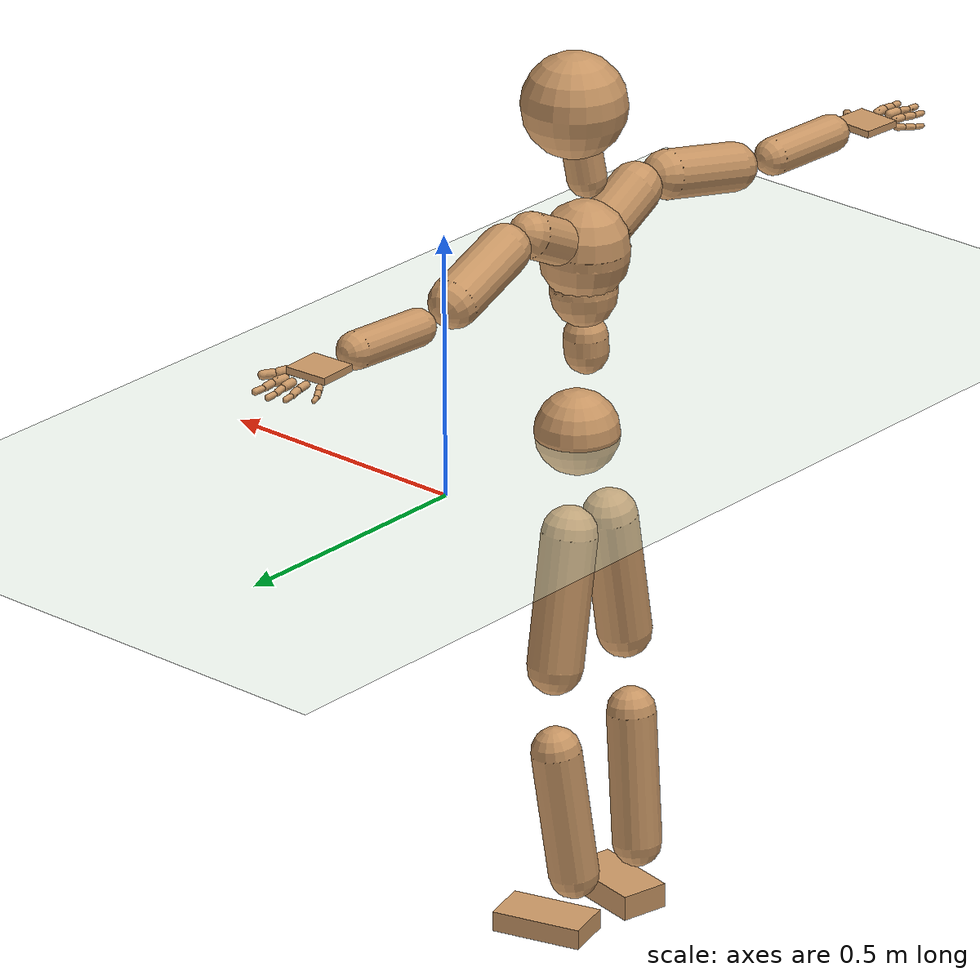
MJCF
<mujoco model="humanoid">
  <compiler coordinate="local" angle="radian"/>
  <default>
    <joint damping="0.0" armature="0.01" stiffness="0.0" limited="true"/>
    <geom conaffinity="1" condim="3" contype="7" margin="0.001" rgba="0.8 0.6 .4 1"/>
  </default>
  <asset>
    <texture type="skybox" builtin="gradient" rgb1=".4 .5 .6" rgb2="0 0 0" width="100" height="100"/>
    <texture builtin="flat" height="1278" mark="cross" markrgb="1 1 1" name="texgeom" random="0.01" rgb1="0.8 0.6 0.4" rgb2="0.8 0.6 0.4" type="cube" width="127"/>
    <texture builtin="checker" height="100" name="texplane" rgb1="0 0 0" rgb2="0.8 0.8 0.8" type="2d" width="100"/>
    <material name="MatPlane" reflectance="0.5" shininess="1" specular="1" texrepeat="60 60" texture="texplane"/>
    <material name="geom" texture="texgeom" texuniform="true"/>
  </asset>
  <worldbody>
    <light cutoff="100" diffuse="1 1 1" dir="-0 0 -1.3" directional="true" exponent="1" pos="0 0 1.3" specular=".1 .1 .1"/>
    <geom conaffinity="1" condim="3" name="floor" pos="0 0 0" rgba="0.8 0.9 0.8 1" size="100 100 .2" type="plane" material="MatPlane"/>
    <body name="Pelvis" pos="0.0001 -0.3563 0.0042">
      <freejoint name="Pelvis"/>
      <geom type="sphere" contype="1" conaffinity="1" density="500" size="0.0798" pos="0.0000 0.0000 0.0000" name="Pelvis"/>
      <body name="L_Hip" pos="-0.0326 0.0454 -0.0884">
        <joint name="L_Hip_x" type="hinge" pos="0 0 0" axis="1 0 0" stiffness="800" damping="80" armature="0.02" range="-180.0000 180.0000"/>
        <joint name="L_Hip_y" type="hinge" pos="0 0 0" axis="0 1 0" stiffness="800" damping="80" armature="0.02" range="-180.0000 180.0000"/>
        <joint name="L_Hip_z" type="hinge" pos="0 0 0" axis="0 0 1" stiffness="800" damping="80" armature="0.02" range="-180.0000 180.0000"/>
        <geom type="capsule" contype="1" conaffinity="1" density="500" fromto="-0.0008 0.0144 -0.0837 -0.0034 0.0574 -0.3347" size="0.0525" name="L_Hip"/>
        <body name="L_Knee" pos="-0.0042 0.0718 -0.4184">
          <joint name="L_Knee_x" type="hinge" pos="0 0 0" axis="1 0 0" stiffness="800" damping="80" armature="0.02" range="-180.0000 180.0000"/>
          <joint name="L_Knee_y" type="hinge" pos="0 0 0" axis="0 1 0" stiffness="800" damping="80" armature="0.02" range="-180.0000 180.0000"/>
          <joint name="L_Knee_z" type="hinge" pos="0 0 0" axis="0 0 1" stiffness="800" damping="80" armature="0.02" range="-180.0000 180.0000"/>
          <geom type="capsule" contype="1" conaffinity="1" density="500" fromto="-0.0079 -0.0073 -0.0835 -0.0315 -0.0293 -0.3338" size="0.0475" name="L_Knee"/>
          <body name="L_Ankle" pos="-0.0394 -0.0367 -0.4173">
            <joint name="L_Ankle_x" type="hinge" pos="0 0 0" axis="1 0 0" stiffness="800" damping="80" armature="0.02" range="-180.0000 180.0000"/>
            <joint name="L_Ankle_y" type="hinge" pos="0 0 0" axis="0 1 0" stiffness="800" damping="80" armature="0.02" range="-180.0000 180.0000"/>
            <joint name="L_Ankle_z" type="hinge" pos="0 0 0" axis="0 0 1" stiffness="800" damping="80" armature="0.02" range="-180.0000 180.0000"/>
            <geom type="box" contype="1" conaffinity="1" density="500" pos="0.0655 0.0180 -0.0298" size="0.0877 0.0469 0.0196" quat="0.9911 0.0000 0.0000 0.1335" name="L_Ankle"/>
            <body name="L_Toe" pos="0.1309 0.0359 -0.0597">
              <joint name="L_Toe_x" type="hinge" pos="0 0 0" axis="1 0 0" stiffness="500" damping="50" armature="0.02" range="-180.0000 180.0000"/>
              <joint name="L_Toe_y" type="hinge" pos="0 0 0" axis="0 1 0" stiffness="500" damping="50" armature="0.02" range="-180.0000 180.0000"/>
              <joint name="L_Toe_z" type="hinge" pos="0 0 0" axis="0 0 1" stiffness="500" damping="50" armature="0.02" range="-180.0000 180.0000"/>
              <geom type="box" contype="1" conaffinity="1" density="500" pos="0.0000 0.0000 0.0307" size="0.0009 0.0023 0.001" quat="0.9904 0.0000 0.0000 0.1385" name="L_Toe"/>
            </body>
          </body>
        </body>
      </body>
      <body name="R_Hip" pos="-0.0268 -0.0463 -0.098">
        <joint name="R_Hip_x" type="hinge" pos="0 0 0" axis="1 0 0" stiffness="800" damping="80" armature="0.02" range="-180.0000 180.0000"/>
        <joint name="R_Hip_y" type="hinge" pos="0 0 0" axis="0 1 0" stiffness="800" damping="80" armature="0.02" range="-180.0000 180.0000"/>
        <joint name="R_Hip_z" type="hinge" pos="0 0 0" axis="0 0 1" stiffness="800" damping="80" armature="0.02" range="-180.0000 180.0000"/>
        <geom type="capsule" contype="1" conaffinity="1" density="500" fromto="-0.0021 -0.0115 -0.0803 -0.0084 -0.0459 -0.3211" size="0.0521" name="R_Hip"/>
        <body name="R_Knee" pos="-0.0105 -0.0573 -0.4014">
          <joint name="R_Knee_x" type="hinge" pos="0 0 0" axis="1 0 0" stiffness="800" damping="80" armature="0.02" range="-180.0000 180.0000"/>
          <joint name="R_Knee_y" type="hinge" pos="0 0 0" axis="0 1 0" stiffness="800" damping="80" armature="0.02" range="-180.0000 180.0000"/>
          <joint name="R_Knee_z" type="hinge" pos="0 0 0" axis="0 0 1" stiffness="800" damping="80" armature="0.02" range="-180.0000 180.0000"/>
          <geom type="capsule" contype="1" conaffinity="1" density="500" fromto="-0.0077 0.0029 -0.0863 -0.0307 0.0116 -0.3453" size="0.0469" name="R_Knee"/>
          <body name="R_Ankle" pos="-0.0384 0.0145 -0.4316">
            <joint name="R_Ankle_x" type="hinge" pos="0 0 0" axis="1 0 0" stiffness="800" damping="80" armature="0.02" range="-180.0000 180.0000"/>
            <joint name="R_Ankle_y" type="hinge" pos="0 0 0" axis="0 1 0" stiffness="800" damping="80" armature="0.02" range="-180.0000 180.0000"/>
            <joint name="R_Ankle_z" type="hinge" pos="0 0 0" axis="0 0 1" stiffness="800" damping="80" armature="0.02" range="-180.0000 180.0000"/>
            <geom type="box" contype="1" conaffinity="1" density="500" pos="0.0683 -0.0148 -0.0297" size="0.0877 0.0469 0.0241" quat="0.9944 0.0000 0.0000 -0.1061" name="R_Ankle"/>
            <body name="R_Toe" pos="0.1367 -0.0295 -0.0595">
              <joint name="R_Toe_x" type="hinge" pos="0 0 0" axis="1 0 0" stiffness="500" damping="50" armature="0.02" range="-180.0000 180.0000"/>
              <joint name="R_Toe_y" type="hinge" pos="0 0 0" axis="0 1 0" stiffness="500" damping="50" armature="0.02" range="-180.0000 180.0000"/>
              <joint name="R_Toe_z" type="hinge" pos="0 0 0" axis="0 0 1" stiffness="500" damping="50" armature="0.02" range="-180.0000 180.0000"/>
              <geom type="box" contype="1" conaffinity="1" density="500" pos="0.0000 0.0000 0.0261" size="0.0009 0.0023 0.001" quat="0.9952 0.0000 0.0000 -0.0977" name="R_Toe"/>
            </body>
          </body>
        </body>
      </body>
      <body name="Torso" pos="-0.0241 -0.0009 0.1051">
        <joint name="Torso_x" type="hinge" pos="0 0 0" axis="1 0 0" stiffness="1000" damping="100" armature="0.02" range="-180.0000 180.0000"/>
        <joint name="Torso_y" type="hinge" pos="0 0 0" axis="0 1 0" stiffness="1000" damping="100" armature="0.02" range="-180.0000 180.0000"/>
        <joint name="Torso_z" type="hinge" pos="0 0 0" axis="0 0 1" stiffness="1000" damping="100" armature="0.02" range="-180.0000 180.0000"/>
        <geom type="capsule" contype="1" conaffinity="1" density="500" fromto="0.0042 0.0007 0.0891 0.0028 0.0005 0.0594" size="0.0415" name="Torso"/>
        <body name="Spine" pos="0.0069 0.0012 0.1486">
          <joint name="Spine_x" type="hinge" pos="0 0 0" axis="1 0 0" stiffness="1000" damping="100" armature="0.02" range="-180.0000 180.0000"/>
          <joint name="Spine_y" type="hinge" pos="0 0 0" axis="0 1 0" stiffness="1000" damping="100" armature="0.02" range="-180.0000 180.0000"/>
          <joint name="Spine_z" type="hinge" pos="0 0 0" axis="0 0 1" stiffness="1000" damping="100" armature="0.02" range="-180.0000 180.0000"/>
          <geom type="capsule" contype="1" conaffinity="1" density="500" fromto="0.0035 -0.0017 0.0329 0.0024 -0.0012 0.0220" size="0.062" name="Spine"/>
          <body name="Chest" pos="0.0059 -0.0029 0.0549">
            <joint name="Chest_x" type="hinge" pos="0 0 0" axis="1 0 0" stiffness="1000" damping="100" armature="0.02" range="-180.0000 180.0000"/>
            <joint name="Chest_y" type="hinge" pos="0 0 0" axis="0 1 0" stiffness="1000" damping="100" armature="0.02" range="-180.0000 180.0000"/>
            <joint name="Chest_z" type="hinge" pos="0 0 0" axis="0 0 1" stiffness="1000" damping="100" armature="0.02" range="-180.0000 180.0000"/>
            <geom type="capsule" contype="1" conaffinity="1" density="500" fromto="-0.0034 -0.0002 0.0603 -0.0022 -0.0001 0.0402" size="0.0838" name="Chest"/>
            <body name="Neck" pos="-0.0116 -0.0049 0.1564">
              <joint name="Neck_x" type="hinge" pos="0 0 0" axis="1 0 0" stiffness="500" damping="50" armature="0.02" range="-180.0000 180.0000"/>
              <joint name="Neck_y" type="hinge" pos="0 0 0" axis="0 1 0" stiffness="500" damping="50" armature="0.02" range="-180.0000 180.0000"/>
              <joint name="Neck_z" type="hinge" pos="0 0 0" axis="0 0 1" stiffness="500" damping="50" armature="0.02" range="-180.0000 180.0000"/>
              <geom type="capsule" contype="1" conaffinity="1" density="500" fromto="0.0041 0.0037 0.0348 0.0164 0.0149 0.1391" size="0.0368" name="Neck"/>
              <body name="Head" pos="0.0204 0.0186 0.1739">
                <joint name="Head_x" type="hinge" pos="0 0 0" axis="1 0 0" stiffness="500" damping="50" armature="0.02" range="-180.0000 180.0000"/>
                <joint name="Head_y" type="hinge" pos="0 0 0" axis="0 1 0" stiffness="500" damping="50" armature="0.02" range="-180.0000 180.0000"/>
                <joint name="Head_z" type="hinge" pos="0 0 0" axis="0 0 1" stiffness="500" damping="50" armature="0.02" range="-180.0000 180.0000"/>
                <geom type="sphere" contype="1" conaffinity="1" density="500" size="0.0977" pos="0.0000 0.0000 0.0000" name="Head"/>
              </body>
            </body>
            <body name="L_Thorax" pos="-0.0003 0.0411 0.0729">
              <joint name="L_Thorax_x" type="hinge" pos="0 0 0" axis="1 0 0" stiffness="500" damping="50" armature="0.02" range="-180.0000 180.0000"/>
              <joint name="L_Thorax_y" type="hinge" pos="0 0 0" axis="0 1 0" stiffness="500" damping="50" armature="0.02" range="-180.0000 180.0000"/>
              <joint name="L_Thorax_z" type="hinge" pos="0 0 0" axis="0 0 1" stiffness="500" damping="50" armature="0.02" range="-180.0000 180.0000"/>
              <geom type="capsule" contype="1" conaffinity="1" density="500" fromto="-0.0015 0.0270 0.0136 -0.0060 0.1082 0.0545" size="0.0426" name="L_Thorax"/>
              <body name="L_Shoulder" pos="-0.0075 0.1352 0.0682">
                <joint name="L_Shoulder_x" type="hinge" pos="0 0 0" axis="1 0 0" stiffness="500" damping="50" armature="0.02" range="-180.0000 180.0000"/>
                <joint name="L_Shoulder_y" type="hinge" pos="0 0 0" axis="0 1 0" stiffness="500" damping="50" armature="0.02" range="-180.0000 180.0000"/>
                <joint name="L_Shoulder_z" type="hinge" pos="0 0 0" axis="0 0 1" stiffness="500" damping="50" armature="0.02" range="-180.0000 180.0000"/>
                <geom type="capsule" contype="1" conaffinity="1" density="500" fromto="-0.0064 0.0518 -0.0150 -0.0255 0.2072 -0.0600" size="0.0474" name="L_Shoulder"/>
                <body name="L_Elbow" pos="-0.0319 0.2589 -0.075">
                  <joint name="L_Elbow_x" type="hinge" pos="0 0 0" axis="1 0 0" stiffness="500" damping="50" armature="0.02" range="-720.0000 720.0000"/>
                  <joint name="L_Elbow_y" type="hinge" pos="0 0 0" axis="0 1 0" stiffness="500" damping="50" armature="0.02" range="-720.0000 720.0000"/>
                  <joint name="L_Elbow_z" type="hinge" pos="0 0 0" axis="0 0 1" stiffness="500" damping="50" armature="0.02" range="-720.0000 720.0000"/>
                  <geom type="capsule" contype="1" conaffinity="1" density="500" fromto="-0.0010 0.0540 0.0037 -0.0039 0.2161 0.0147" size="0.0345" name="L_Elbow"/>
                  <body name="L_Wrist" pos="-0.0049 0.2701 0.0184">
                    <joint name="L_Wrist_x" type="hinge" pos="0 0 0" axis="1 0 0" stiffness="300" damping="30" armature="0.02" range="-180.0000 180.0000"/>
                    <joint name="L_Wrist_y" type="hinge" pos="0 0 0" axis="0 1 0" stiffness="300" damping="30" armature="0.02" range="-180.0000 180.0000"/>
                    <joint name="L_Wrist_z" type="hinge" pos="0 0 0" axis="0 0 1" stiffness="300" damping="30" armature="0.02" range="-180.0000 180.0000"/>
                    <geom type="box" contype="1" conaffinity="1" density="500" pos="-0.0026 0.0425 -0.0059" size="0.0383 0.0422 0.0067" quat="0.7287 0.0000 0.0000 -0.6848" name="L_Wrist"/>
                    <body name="L_Index1" pos="0.0186 0.0996 -0.0094">
                      <joint name="L_Index1_x" type="hinge" pos="0 0 0" axis="1 0 0" stiffness="100" damping="10" armature="0.02" range="-180.0000 180.0000"/>
                      <joint name="L_Index1_y" type="hinge" pos="0 0 0" axis="0 1 0" stiffness="100" damping="10" armature="0.02" range="-180.0000 180.0000"/>
                      <joint name="L_Index1_z" type="hinge" pos="0 0 0" axis="0 0 1" stiffness="100" damping="10" armature="0.02" range="-180.0000 180.0000"/>
                      <geom type="capsule" contype="1" conaffinity="1" density="500" fromto="0.0007 0.0065 0.0002 0.0027 0.0259 0.0008" size="0.0086" name="L_Index1"/>
                      <body name="L_Index2" pos="0.0034 0.0324 0.001">
                        <joint name="L_Index2_x" type="hinge" pos="0 0 0" axis="1 0 0" stiffness="100" damping="10" armature="0.02" range="-180.0000 180.0000"/>
                        <joint name="L_Index2_y" type="hinge" pos="0 0 0" axis="0 1 0" stiffness="100" damping="10" armature="0.02" range="-180.0000 180.0000"/>
                        <joint name="L_Index2_z" type="hinge" pos="0 0 0" axis="0 0 1" stiffness="100" damping="10" armature="0.02" range="-180.0000 180.0000"/>
                        <geom type="capsule" contype="1" conaffinity="1" density="500" fromto="0.0000 0.0046 -0.0005 0.0000 0.0184 -0.0022" size="0.0073" name="L_Index2"/>
                        <body name="L_Index3" pos="0.0001 0.0231 -0.0027">
                          <joint name="L_Index3_x" type="hinge" pos="0 0 0" axis="1 0 0" stiffness="100" damping="10" armature="0.02" range="-180.0000 180.0000"/>
                          <joint name="L_Index3_y" type="hinge" pos="0 0 0" axis="0 1 0" stiffness="100" damping="10" armature="0.02" range="-180.0000 180.0000"/>
                          <joint name="L_Index3_z" type="hinge" pos="0 0 0" axis="0 0 1" stiffness="100" damping="10" armature="0.02" range="-180.0000 180.0000"/>
                          <geom type="capsule" contype="1" conaffinity="1" density="500" fromto="0.0004 0.0050 -0.0001 0.0016 0.0200 -0.0006" size="0.0063" name="L_Index3"/>
                        </body>
                      </body>
                    </body>
                    <body name="L_Middle1" pos="-0.0032 0.1071 -0.0074">
                      <joint name="L_Middle1_x" type="hinge" pos="0 0 0" axis="1 0 0" stiffness="100" damping="10" armature="0.02" range="-180.0000 180.0000"/>
                      <joint name="L_Middle1_y" type="hinge" pos="0 0 0" axis="0 1 0" stiffness="100" damping="10" armature="0.02" range="-180.0000 180.0000"/>
                      <joint name="L_Middle1_z" type="hinge" pos="0 0 0" axis="0 0 1" stiffness="100" damping="10" armature="0.02" range="-180.0000 180.0000"/>
                      <geom type="capsule" contype="1" conaffinity="1" density="500" fromto="-0.0008 0.0062 -0.0000 -0.0032 0.0247 -0.0001" size="0.0085" name="L_Middle1"/>
                      <body name="L_Middle2" pos="-0.004 0.0308 -0.0001">
                        <joint name="L_Middle2_x" type="hinge" pos="0 0 0" axis="1 0 0" stiffness="100" damping="10" armature="0.02" range="-180.0000 180.0000"/>
                        <joint name="L_Middle2_y" type="hinge" pos="0 0 0" axis="0 1 0" stiffness="100" damping="10" armature="0.02" range="-180.0000 180.0000"/>
                        <joint name="L_Middle2_z" type="hinge" pos="0 0 0" axis="0 0 1" stiffness="100" damping="10" armature="0.02" range="-180.0000 180.0000"/>
                        <geom type="capsule" contype="1" conaffinity="1" density="500" fromto="-0.0008 0.0048 -0.0005 -0.0032 0.0190 -0.0019" size="0.0065" name="L_Middle2"/>
                        <body name="L_Middle3" pos="-0.004 0.0238 -0.0024">
                          <joint name="L_Middle3_x" type="hinge" pos="0 0 0" axis="1 0 0" stiffness="100" damping="10" armature="0.02" range="-180.0000 180.0000"/>
                          <joint name="L_Middle3_y" type="hinge" pos="0 0 0" axis="0 1 0" stiffness="100" damping="10" armature="0.02" range="-180.0000 180.0000"/>
                          <joint name="L_Middle3_z" type="hinge" pos="0 0 0" axis="0 0 1" stiffness="100" damping="10" armature="0.02" range="-180.0000 180.0000"/>
                          <geom type="capsule" contype="1" conaffinity="1" density="500" fromto="-0.0004 0.0052 -0.0001 -0.0016 0.0206 -0.0003" size="0.006" name="L_Middle3"/>
                        </body>
                      </body>
                    </body>
                    <body name="L_Pinky1" pos="-0.0409 0.0827 -0.0142">
                      <joint name="L_Pinky1_x" type="hinge" pos="0 0 0" axis="1 0 0" stiffness="100" damping="10" armature="0.02" range="-180.0000 180.0000"/>
                      <joint name="L_Pinky1_y" type="hinge" pos="0 0 0" axis="0 1 0" stiffness="100" damping="10" armature="0.02" range="-180.0000 180.0000"/>
                      <joint name="L_Pinky1_z" type="hinge" pos="0 0 0" axis="0 0 1" stiffness="100" damping="10" armature="0.02" range="-180.0000 180.0000"/>
                      <geom type="capsule" contype="1" conaffinity="1" density="500" fromto="-0.0023 0.0032 -0.0003 -0.0091 0.0129 -0.0013" size="0.0063" name="L_Pinky1"/>
                      <body name="L_Pinky2" pos="-0.0114 0.0161 -0.0016">
                        <joint name="L_Pinky2_x" type="hinge" pos="0 0 0" axis="1 0 0" stiffness="100" damping="10" armature="0.02" range="-180.0000 180.0000"/>
                        <joint name="L_Pinky2_y" type="hinge" pos="0 0 0" axis="0 1 0" stiffness="100" damping="10" armature="0.02" range="-180.0000 180.0000"/>
                        <joint name="L_Pinky2_z" type="hinge" pos="0 0 0" axis="0 0 1" stiffness="100" damping="10" armature="0.02" range="-180.0000 180.0000"/>
                        <geom type="capsule" contype="1" conaffinity="1" density="500" fromto="-0.0022 0.0032 -0.0003 -0.0088 0.0128 -0.0013" size="0.0061" name="L_Pinky2"/>
                        <body name="L_Pinky3" pos="-0.011 0.016 -0.0017">
                          <joint name="L_Pinky3_x" type="hinge" pos="0 0 0" axis="1 0 0" stiffness="100" damping="10" armature="0.02" range="-180.0000 180.0000"/>
                          <joint name="L_Pinky3_y" type="hinge" pos="0 0 0" axis="0 1 0" stiffness="100" damping="10" armature="0.02" range="-180.0000 180.0000"/>
                          <joint name="L_Pinky3_z" type="hinge" pos="0 0 0" axis="0 0 1" stiffness="100" damping="10" armature="0.02" range="-180.0000 180.0000"/>
                          <geom type="capsule" contype="1" conaffinity="1" density="500" fromto="-0.0018 0.0036 0.0001 -0.0072 0.0144 0.0003" size="0.0048" name="L_Pinky3"/>
                        </body>
                      </body>
                    </body>
                    <body name="L_Ring1" pos="-0.0248 0.0954 -0.0096">
                      <joint name="L_Ring1_x" type="hinge" pos="0 0 0" axis="1 0 0" stiffness="100" damping="10" armature="0.02" range="-180.0000 180.0000"/>
                      <joint name="L_Ring1_y" type="hinge" pos="0 0 0" axis="0 1 0" stiffness="100" damping="10" armature="0.02" range="-180.0000 180.0000"/>
                      <joint name="L_Ring1_z" type="hinge" pos="0 0 0" axis="0 0 1" stiffness="100" damping="10" armature="0.02" range="-180.0000 180.0000"/>
                      <geom type="capsule" contype="1" conaffinity="1" density="500" fromto="-0.0010 0.0057 0.0001 -0.0038 0.0227 0.0003" size="0.0073" name="L_Ring1"/>
                      <body name="L_Ring2" pos="-0.0048 0.0284 0.0003">
                        <joint name="L_Ring2_x" type="hinge" pos="0 0 0" axis="1 0 0" stiffness="100" damping="10" armature="0.02" range="-180.0000 180.0000"/>
                        <joint name="L_Ring2_y" type="hinge" pos="0 0 0" axis="0 1 0" stiffness="100" damping="10" armature="0.02" range="-180.0000 180.0000"/>
                        <joint name="L_Ring2_z" type="hinge" pos="0 0 0" axis="0 0 1" stiffness="100" damping="10" armature="0.02" range="-180.0000 180.0000"/>
                        <geom type="capsule" contype="1" conaffinity="1" density="500" fromto="-0.0013 0.0047 -0.0004 -0.0052 0.0187 -0.0016" size="0.007" name="L_Ring2"/>
                        <body name="L_Ring3" pos="-0.0065 0.0233 -0.002">
                          <joint name="L_Ring3_x" type="hinge" pos="0 0 0" axis="1 0 0" stiffness="100" damping="10" armature="0.02" range="-180.0000 180.0000"/>
                          <joint name="L_Ring3_y" type="hinge" pos="0 0 0" axis="0 1 0" stiffness="100" damping="10" armature="0.02" range="-180.0000 180.0000"/>
                          <joint name="L_Ring3_z" type="hinge" pos="0 0 0" axis="0 0 1" stiffness="100" damping="10" armature="0.02" range="-180.0000 180.0000"/>
                          <geom type="capsule" contype="1" conaffinity="1" density="500" fromto="-0.0009 0.0051 -0.0000 -0.0036 0.0203 -0.0000" size="0.0056" name="L_Ring3"/>
                        </body>
                      </body>
                    </body>
                    <body name="L_Thumb1" pos="0.0239 0.0399 -0.0184">
                      <joint name="L_Thumb1_x" type="hinge" pos="0 0 0" axis="1 0 0" stiffness="100" damping="10" armature="0.02" range="-180.0000 180.0000"/>
                      <joint name="L_Thumb1_y" type="hinge" pos="0 0 0" axis="0 1 0" stiffness="100" damping="10" armature="0.02" range="-180.0000 180.0000"/>
                      <joint name="L_Thumb1_z" type="hinge" pos="0 0 0" axis="0 0 1" stiffness="100" damping="10" armature="0.02" range="-180.0000 180.0000"/>
                      <geom type="capsule" contype="1" conaffinity="1" density="500" fromto="0.0051 0.0034 0.0002 0.0203 0.0138 0.0009" size="0.0114" name="L_Thumb1"/>
                      <body name="L_Thumb2" pos="0.0254 0.0172 0.0011">
                        <joint name="L_Thumb2_x" type="hinge" pos="0 0 0" axis="1 0 0" stiffness="100" damping="10" armature="0.02" range="-180.0000 180.0000"/>
                        <joint name="L_Thumb2_y" type="hinge" pos="0 0 0" axis="0 1 0" stiffness="100" damping="10" armature="0.02" range="-180.0000 180.0000"/>
                        <joint name="L_Thumb2_z" type="hinge" pos="0 0 0" axis="0 0 1" stiffness="100" damping="10" armature="0.02" range="-180.0000 180.0000"/>
                        <geom type="capsule" contype="1" conaffinity="1" density="500" fromto="0.0033 0.0042 -0.0008 0.0131 0.0168 -0.0032" size="0.0092" name="L_Thumb2"/>
                        <body name="L_Thumb3" pos="0.0163 0.021 -0.004">
                          <joint name="L_Thumb3_x" type="hinge" pos="0 0 0" axis="1 0 0" stiffness="100" damping="10" armature="0.02" range="-180.0000 180.0000"/>
                          <joint name="L_Thumb3_y" type="hinge" pos="0 0 0" axis="0 1 0" stiffness="100" damping="10" armature="0.02" range="-180.0000 180.0000"/>
                          <joint name="L_Thumb3_z" type="hinge" pos="0 0 0" axis="0 0 1" stiffness="100" damping="10" armature="0.02" range="-180.0000 180.0000"/>
                          <geom type="capsule" contype="1" conaffinity="1" density="500" fromto="0.0037 0.0046 -0.0004 0.0147 0.0184 -0.0016" size="0.0084" name="L_Thumb3"/>
                        </body>
                      </body>
                    </body>
                  </body>
                </body>
              </body>
            </body>
            <body name="R_Thorax" pos="-0.0049 -0.0373 0.0721">
              <joint name="R_Thorax_x" type="hinge" pos="0 0 0" axis="1 0 0" stiffness="500" damping="50" armature="0.02" range="-180.0000 180.0000"/>
              <joint name="R_Thorax_y" type="hinge" pos="0 0 0" axis="0 1 0" stiffness="500" damping="50" armature="0.02" range="-180.0000 180.0000"/>
              <joint name="R_Thorax_z" type="hinge" pos="0 0 0" axis="0 0 1" stiffness="500" damping="50" armature="0.02" range="-180.0000 180.0000"/>
              <geom type="capsule" contype="1" conaffinity="1" density="500" fromto="0.0003 -0.0254 0.0137 0.0011 -0.1014 0.0546" size="0.0494" name="R_Thorax"/>
              <body name="R_Shoulder" pos="0.0014 -0.1268 0.0683">
                <joint name="R_Shoulder_x" type="hinge" pos="0 0 0" axis="1 0 0" stiffness="500" damping="50" armature="0.02" range="-180.0000 180.0000"/>
                <joint name="R_Shoulder_y" type="hinge" pos="0 0 0" axis="0 1 0" stiffness="500" damping="50" armature="0.02" range="-180.0000 180.0000"/>
                <joint name="R_Shoulder_z" type="hinge" pos="0 0 0" axis="0 0 1" stiffness="500" damping="50" armature="0.02" range="-180.0000 180.0000"/>
                <geom type="capsule" contype="1" conaffinity="1" density="500" fromto="-0.0056 -0.0551 -0.0105 -0.0224 -0.2205 -0.0421" size="0.0465" name="R_Shoulder"/>
                <body name="R_Elbow" pos="-0.028 -0.2756 -0.0527">
                  <joint name="R_Elbow_x" type="hinge" pos="0 0 0" axis="1 0 0" stiffness="500" damping="50" armature="0.02" range="-720.0000 720.0000"/>
                  <joint name="R_Elbow_y" type="hinge" pos="0 0 0" axis="0 1 0" stiffness="500" damping="50" armature="0.02" range="-720.0000 720.0000"/>
                  <joint name="R_Elbow_z" type="hinge" pos="0 0 0" axis="0 0 1" stiffness="500" damping="50" armature="0.02" range="-720.0000 720.0000"/>
                  <geom type="capsule" contype="1" conaffinity="1" density="500" fromto="-0.0024 -0.0522 -0.0001 -0.0098 -0.2088 -0.0002" size="0.0354" name="R_Elbow"/>
                  <body name="R_Wrist" pos="-0.0122 -0.2611 -0.0003">
                    <joint name="R_Wrist_x" type="hinge" pos="0 0 0" axis="1 0 0" stiffness="300" damping="30" armature="0.02" range="-180.0000 180.0000"/>
                    <joint name="R_Wrist_y" type="hinge" pos="0 0 0" axis="0 1 0" stiffness="300" damping="30" armature="0.02" range="-180.0000 180.0000"/>
                    <joint name="R_Wrist_z" type="hinge" pos="0 0 0" axis="0 0 1" stiffness="300" damping="30" armature="0.02" range="-180.0000 180.0000"/>
                    <geom type="box" contype="1" conaffinity="1" density="500" pos="-0.0030 -0.0424 -0.0074" size="0.0383 0.0435 0.0067" quat="0.7319 0.0000 0.0000 0.6814" name="R_Wrist"/>
                    <body name="R_Index1" pos="0.0178 -0.0995 -0.0124">
                      <joint name="R_Index1_x" type="hinge" pos="0 0 0" axis="1 0 0" stiffness="100" damping="10" armature="0.02" range="-180.0000 180.0000"/>
                      <joint name="R_Index1_y" type="hinge" pos="0 0 0" axis="0 1 0" stiffness="100" damping="10" armature="0.02" range="-180.0000 180.0000"/>
                      <joint name="R_Index1_z" type="hinge" pos="0 0 0" axis="0 0 1" stiffness="100" damping="10" armature="0.02" range="-180.0000 180.0000"/>
                      <geom type="capsule" contype="1" conaffinity="1" density="500" fromto="0.0007 -0.0065 0.0002 0.0027 -0.0259 0.0008" size="0.0086" name="R_Index1"/>
                      <body name="R_Index2" pos="0.0034 -0.0324 0.001">
                        <joint name="R_Index2_x" type="hinge" pos="0 0 0" axis="1 0 0" stiffness="100" damping="10" armature="0.02" range="-180.0000 180.0000"/>
                        <joint name="R_Index2_y" type="hinge" pos="0 0 0" axis="0 1 0" stiffness="100" damping="10" armature="0.02" range="-180.0000 180.0000"/>
                        <joint name="R_Index2_z" type="hinge" pos="0 0 0" axis="0 0 1" stiffness="100" damping="10" armature="0.02" range="-180.0000 180.0000"/>
                        <geom type="capsule" contype="1" conaffinity="1" density="500" fromto="0.0000 -0.0046 -0.0005 0.0000 -0.0184 -0.0022" size="0.0073" name="R_Index2"/>
                        <body name="R_Index3" pos="0.0001 -0.0231 -0.0027">
                          <joint name="R_Index3_x" type="hinge" pos="0 0 0" axis="1 0 0" stiffness="100" damping="10" armature="0.02" range="-180.0000 180.0000"/>
                          <joint name="R_Index3_y" type="hinge" pos="0 0 0" axis="0 1 0" stiffness="100" damping="10" armature="0.02" range="-180.0000 180.0000"/>
                          <joint name="R_Index3_z" type="hinge" pos="0 0 0" axis="0 0 1" stiffness="100" damping="10" armature="0.02" range="-180.0000 180.0000"/>
                          <geom type="capsule" contype="1" conaffinity="1" density="500" fromto="0.0004 -0.0042 -0.0001 0.0016 -0.0168 -0.0006" size="0.0066" name="R_Index3"/>
                        </body>
                      </body>
                    </body>
                    <body name="R_Middle1" pos="-0.0039 -0.107 -0.0104">
                      <joint name="R_Middle1_x" type="hinge" pos="0 0 0" axis="1 0 0" stiffness="100" damping="10" armature="0.02" range="-180.0000 180.0000"/>
                      <joint name="R_Middle1_y" type="hinge" pos="0 0 0" axis="0 1 0" stiffness="100" damping="10" armature="0.02" range="-180.0000 180.0000"/>
                      <joint name="R_Middle1_z" type="hinge" pos="0 0 0" axis="0 0 1" stiffness="100" damping="10" armature="0.02" range="-180.0000 180.0000"/>
                      <geom type="capsule" contype="1" conaffinity="1" density="500" fromto="-0.0008 -0.0062 -0.0000 -0.0032 -0.0247 -0.0001" size="0.0085" name="R_Middle1"/>
                      <body name="R_Middle2" pos="-0.004 -0.0308 -0.0001">
                        <joint name="R_Middle2_x" type="hinge" pos="0 0 0" axis="1 0 0" stiffness="100" damping="10" armature="0.02" range="-180.0000 180.0000"/>
                        <joint name="R_Middle2_y" type="hinge" pos="0 0 0" axis="0 1 0" stiffness="100" damping="10" armature="0.02" range="-180.0000 180.0000"/>
                        <joint name="R_Middle2_z" type="hinge" pos="0 0 0" axis="0 0 1" stiffness="100" damping="10" armature="0.02" range="-180.0000 180.0000"/>
                        <geom type="capsule" contype="1" conaffinity="1" density="500" fromto="-0.0008 -0.0048 -0.0005 -0.0032 -0.0190 -0.0019" size="0.0065" name="R_Middle2"/>
                        <body name="R_Middle3" pos="-0.004 -0.0238 -0.0024">
                          <joint name="R_Middle3_x" type="hinge" pos="0 0 0" axis="1 0 0" stiffness="100" damping="10" armature="0.02" range="-180.0000 180.0000"/>
                          <joint name="R_Middle3_y" type="hinge" pos="0 0 0" axis="0 1 0" stiffness="100" damping="10" armature="0.02" range="-180.0000 180.0000"/>
                          <joint name="R_Middle3_z" type="hinge" pos="0 0 0" axis="0 0 1" stiffness="100" damping="10" armature="0.02" range="-180.0000 180.0000"/>
                          <geom type="capsule" contype="1" conaffinity="1" density="500" fromto="-0.0004 -0.0044 -0.0001 -0.0016 -0.0174 -0.0003" size="0.0062" name="R_Middle3"/>
                        </body>
                      </body>
                    </body>
                    <body name="R_Pinky1" pos="-0.0417 -0.0825 -0.0172">
                      <joint name="R_Pinky1_x" type="hinge" pos="0 0 0" axis="1 0 0" stiffness="100" damping="10" armature="0.02" range="-180.0000 180.0000"/>
                      <joint name="R_Pinky1_y" type="hinge" pos="0 0 0" axis="0 1 0" stiffness="100" damping="10" armature="0.02" range="-180.0000 180.0000"/>
                      <joint name="R_Pinky1_z" type="hinge" pos="0 0 0" axis="0 0 1" stiffness="100" damping="10" armature="0.02" range="-180.0000 180.0000"/>
                      <geom type="capsule" contype="1" conaffinity="1" density="500" fromto="-0.0023 -0.0032 -0.0003 -0.0091 -0.0129 -0.0013" size="0.0063" name="R_Pinky1"/>
                      <body name="R_Pinky2" pos="-0.0114 -0.0161 -0.0016">
                        <joint name="R_Pinky2_x" type="hinge" pos="0 0 0" axis="1 0 0" stiffness="100" damping="10" armature="0.02" range="-180.0000 180.0000"/>
                        <joint name="R_Pinky2_y" type="hinge" pos="0 0 0" axis="0 1 0" stiffness="100" damping="10" armature="0.02" range="-180.0000 180.0000"/>
                        <joint name="R_Pinky2_z" type="hinge" pos="0 0 0" axis="0 0 1" stiffness="100" damping="10" armature="0.02" range="-180.0000 180.0000"/>
                        <geom type="capsule" contype="1" conaffinity="1" density="500" fromto="-0.0022 -0.0032 -0.0003 -0.0088 -0.0128 -0.0013" size="0.0061" name="R_Pinky2"/>
                        <body name="R_Pinky3" pos="-0.011 -0.016 -0.0017">
                          <joint name="R_Pinky3_x" type="hinge" pos="0 0 0" axis="1 0 0" stiffness="100" damping="10" armature="0.02" range="-180.0000 180.0000"/>
                          <joint name="R_Pinky3_y" type="hinge" pos="0 0 0" axis="0 1 0" stiffness="100" damping="10" armature="0.02" range="-180.0000 180.0000"/>
                          <joint name="R_Pinky3_z" type="hinge" pos="0 0 0" axis="0 0 1" stiffness="100" damping="10" armature="0.02" range="-180.0000 180.0000"/>
                          <geom type="capsule" contype="1" conaffinity="1" density="500" fromto="-0.0018 -0.0028 0.0001 -0.0072 -0.0112 0.0003" size="0.005" name="R_Pinky3"/>
                        </body>
                      </body>
                    </body>
                    <body name="R_Ring1" pos="-0.0256 -0.0953 -0.0126">
                      <joint name="R_Ring1_x" type="hinge" pos="0 0 0" axis="1 0 0" stiffness="100" damping="10" armature="0.02" range="-180.0000 180.0000"/>
                      <joint name="R_Ring1_y" type="hinge" pos="0 0 0" axis="0 1 0" stiffness="100" damping="10" armature="0.02" range="-180.0000 180.0000"/>
                      <joint name="R_Ring1_z" type="hinge" pos="0 0 0" axis="0 0 1" stiffness="100" damping="10" armature="0.02" range="-180.0000 180.0000"/>
                      <geom type="capsule" contype="1" conaffinity="1" density="500" fromto="-0.0010 -0.0057 0.0001 -0.0038 -0.0227 0.0003" size="0.0073" name="R_Ring1"/>
                      <body name="R_Ring2" pos="-0.0048 -0.0284 0.0003">
                        <joint name="R_Ring2_x" type="hinge" pos="0 0 0" axis="1 0 0" stiffness="100" damping="10" armature="0.02" range="-180.0000 180.0000"/>
                        <joint name="R_Ring2_y" type="hinge" pos="0 0 0" axis="0 1 0" stiffness="100" damping="10" armature="0.02" range="-180.0000 180.0000"/>
                        <joint name="R_Ring2_z" type="hinge" pos="0 0 0" axis="0 0 1" stiffness="100" damping="10" armature="0.02" range="-180.0000 180.0000"/>
                        <geom type="capsule" contype="1" conaffinity="1" density="500" fromto="-0.0013 -0.0047 -0.0004 -0.0052 -0.0187 -0.0016" size="0.007" name="R_Ring2"/>
                        <body name="R_Ring3" pos="-0.0065 -0.0233 -0.002">
                          <joint name="R_Ring3_x" type="hinge" pos="0 0 0" axis="1 0 0" stiffness="100" damping="10" armature="0.02" range="-180.0000 180.0000"/>
                          <joint name="R_Ring3_y" type="hinge" pos="0 0 0" axis="0 1 0" stiffness="100" damping="10" armature="0.02" range="-180.0000 180.0000"/>
                          <joint name="R_Ring3_z" type="hinge" pos="0 0 0" axis="0 0 1" stiffness="100" damping="10" armature="0.02" range="-180.0000 180.0000"/>
                          <geom type="capsule" contype="1" conaffinity="1" density="500" fromto="-0.0009 -0.0043 -0.0000 -0.0036 -0.0171 -0.0000" size="0.0058" name="R_Ring3"/>
                        </body>
                      </body>
                    </body>
                    <body name="R_Thumb1" pos="0.0231 -0.0398 -0.0214">
                      <joint name="R_Thumb1_x" type="hinge" pos="0 0 0" axis="1 0 0" stiffness="100" damping="10" armature="0.02" range="-180.0000 180.0000"/>
                      <joint name="R_Thumb1_y" type="hinge" pos="0 0 0" axis="0 1 0" stiffness="100" damping="10" armature="0.02" range="-180.0000 180.0000"/>
                      <joint name="R_Thumb1_z" type="hinge" pos="0 0 0" axis="0 0 1" stiffness="100" damping="10" armature="0.02" range="-180.0000 180.0000"/>
                      <geom type="capsule" contype="1" conaffinity="1" density="500" fromto="0.0051 -0.0034 0.0002 0.0203 -0.0138 0.0009" size="0.0114" name="R_Thumb1"/>
                      <body name="R_Thumb2" pos="0.0254 -0.0172 0.0011">
                        <joint name="R_Thumb2_x" type="hinge" pos="0 0 0" axis="1 0 0" stiffness="100" damping="10" armature="0.02" range="-180.0000 180.0000"/>
                        <joint name="R_Thumb2_y" type="hinge" pos="0 0 0" axis="0 1 0" stiffness="100" damping="10" armature="0.02" range="-180.0000 180.0000"/>
                        <joint name="R_Thumb2_z" type="hinge" pos="0 0 0" axis="0 0 1" stiffness="100" damping="10" armature="0.02" range="-180.0000 180.0000"/>
                        <geom type="capsule" contype="1" conaffinity="1" density="500" fromto="0.0033 -0.0042 -0.0008 0.0131 -0.0168 -0.0032" size="0.0092" name="R_Thumb2"/>
                        <body name="R_Thumb3" pos="0.0163 -0.021 -0.004">
                          <joint name="R_Thumb3_x" type="hinge" pos="0 0 0" axis="1 0 0" stiffness="100" damping="10" armature="0.02" range="-180.0000 180.0000"/>
                          <joint name="R_Thumb3_y" type="hinge" pos="0 0 0" axis="0 1 0" stiffness="100" damping="10" armature="0.02" range="-180.0000 180.0000"/>
                          <joint name="R_Thumb3_z" type="hinge" pos="0 0 0" axis="0 0 1" stiffness="100" damping="10" armature="0.02" range="-180.0000 180.0000"/>
                          <geom type="capsule" contype="1" conaffinity="1" density="500" fromto="0.0037 -0.0038 -0.0004 0.0147 -0.0152 -0.0016" size="0.0086" name="R_Thumb3"/>
                        </body>
                      </body>
                    </body>
                  </body>
                </body>
              </body>
            </body>
          </body>
        </body>
      </body>
    </body>
  </worldbody>
  <actuator>
    <motor name="L_Hip_x" joint="L_Hip_x" gear="500"/>
    <motor name="L_Hip_y" joint="L_Hip_y" gear="500"/>
    <motor name="L_Hip_z" joint="L_Hip_z" gear="500"/>
    <motor name="L_Knee_x" joint="L_Knee_x" gear="500"/>
    <motor name="L_Knee_y" joint="L_Knee_y" gear="500"/>
    <motor name="L_Knee_z" joint="L_Knee_z" gear="500"/>
    <motor name="L_Ankle_x" joint="L_Ankle_x" gear="500"/>
    <motor name="L_Ankle_y" joint="L_Ankle_y" gear="500"/>
    <motor name="L_Ankle_z" joint="L_Ankle_z" gear="500"/>
    <motor name="L_Toe_x" joint="L_Toe_x" gear="500"/>
    <motor name="L_Toe_y" joint="L_Toe_y" gear="500"/>
    <motor name="L_Toe_z" joint="L_Toe_z" gear="500"/>
    <motor name="R_Hip_x" joint="R_Hip_x" gear="500"/>
    <motor name="R_Hip_y" joint="R_Hip_y" gear="500"/>
    <motor name="R_Hip_z" joint="R_Hip_z" gear="500"/>
    <motor name="R_Knee_x" joint="R_Knee_x" gear="500"/>
    <motor name="R_Knee_y" joint="R_Knee_y" gear="500"/>
    <motor name="R_Knee_z" joint="R_Knee_z" gear="500"/>
    <motor name="R_Ankle_x" joint="R_Ankle_x" gear="500"/>
    <motor name="R_Ankle_y" joint="R_Ankle_y" gear="500"/>
    <motor name="R_Ankle_z" joint="R_Ankle_z" gear="500"/>
    <motor name="R_Toe_x" joint="R_Toe_x" gear="500"/>
    <motor name="R_Toe_y" joint="R_Toe_y" gear="500"/>
    <motor name="R_Toe_z" joint="R_Toe_z" gear="500"/>
    <motor name="Torso_x" joint="Torso_x" gear="500"/>
    <motor name="Torso_y" joint="Torso_y" gear="500"/>
    <motor name="Torso_z" joint="Torso_z" gear="500"/>
    <motor name="Spine_x" joint="Spine_x" gear="500"/>
    <motor name="Spine_y" joint="Spine_y" gear="500"/>
    <motor name="Spine_z" joint="Spine_z" gear="500"/>
    <motor name="Chest_x" joint="Chest_x" gear="500"/>
    <motor name="Chest_y" joint="Chest_y" gear="500"/>
    <motor name="Chest_z" joint="Chest_z" gear="500"/>
    <motor name="Neck_x" joint="Neck_x" gear="500"/>
    <motor name="Neck_y" joint="Neck_y" gear="500"/>
    <motor name="Neck_z" joint="Neck_z" gear="500"/>
    <motor name="Head_x" joint="Head_x" gear="500"/>
    <motor name="Head_y" joint="Head_y" gear="500"/>
    <motor name="Head_z" joint="Head_z" gear="500"/>
    <motor name="L_Thorax_x" joint="L_Thorax_x" gear="500"/>
    <motor name="L_Thorax_y" joint="L_Thorax_y" gear="500"/>
    <motor name="L_Thorax_z" joint="L_Thorax_z" gear="500"/>
    <motor name="L_Shoulder_x" joint="L_Shoulder_x" gear="500"/>
    <motor name="L_Shoulder_y" joint="L_Shoulder_y" gear="500"/>
    <motor name="L_Shoulder_z" joint="L_Shoulder_z" gear="500"/>
    <motor name="L_Elbow_x" joint="L_Elbow_x" gear="500"/>
    <motor name="L_Elbow_y" joint="L_Elbow_y" gear="500"/>
    <motor name="L_Elbow_z" joint="L_Elbow_z" gear="500"/>
    <motor name="L_Wrist_x" joint="L_Wrist_x" gear="500"/>
    <motor name="L_Wrist_y" joint="L_Wrist_y" gear="500"/>
    <motor name="L_Wrist_z" joint="L_Wrist_z" gear="500"/>
    <motor name="L_Index1_x" joint="L_Index1_x" gear="500"/>
    <motor name="L_Index1_y" joint="L_Index1_y" gear="500"/>
    <motor name="L_Index1_z" joint="L_Index1_z" gear="500"/>
    <motor name="L_Index2_x" joint="L_Index2_x" gear="500"/>
    <motor name="L_Index2_y" joint="L_Index2_y" gear="500"/>
    <motor name="L_Index2_z" joint="L_Index2_z" gear="500"/>
    <motor name="L_Index3_x" joint="L_Index3_x" gear="500"/>
    <motor name="L_Index3_y" joint="L_Index3_y" gear="500"/>
    <motor name="L_Index3_z" joint="L_Index3_z" gear="500"/>
    <motor name="L_Middle1_x" joint="L_Middle1_x" gear="500"/>
    <motor name="L_Middle1_y" joint="L_Middle1_y" gear="500"/>
    <motor name="L_Middle1_z" joint="L_Middle1_z" gear="500"/>
    <motor name="L_Middle2_x" joint="L_Middle2_x" gear="500"/>
    <motor name="L_Middle2_y" joint="L_Middle2_y" gear="500"/>
    <motor name="L_Middle2_z" joint="L_Middle2_z" gear="500"/>
    <motor name="L_Middle3_x" joint="L_Middle3_x" gear="500"/>
    <motor name="L_Middle3_y" joint="L_Middle3_y" gear="500"/>
    <motor name="L_Middle3_z" joint="L_Middle3_z" gear="500"/>
    <motor name="L_Pinky1_x" joint="L_Pinky1_x" gear="500"/>
    <motor name="L_Pinky1_y" joint="L_Pinky1_y" gear="500"/>
    <motor name="L_Pinky1_z" joint="L_Pinky1_z" gear="500"/>
    <motor name="L_Pinky2_x" joint="L_Pinky2_x" gear="500"/>
    <motor name="L_Pinky2_y" joint="L_Pinky2_y" gear="500"/>
    <motor name="L_Pinky2_z" joint="L_Pinky2_z" gear="500"/>
    <motor name="L_Pinky3_x" joint="L_Pinky3_x" gear="500"/>
    <motor name="L_Pinky3_y" joint="L_Pinky3_y" gear="500"/>
    <motor name="L_Pinky3_z" joint="L_Pinky3_z" gear="500"/>
    <motor name="L_Ring1_x" joint="L_Ring1_x" gear="500"/>
    <motor name="L_Ring1_y" joint="L_Ring1_y" gear="500"/>
    <motor name="L_Ring1_z" joint="L_Ring1_z" gear="500"/>
    <motor name="L_Ring2_x" joint="L_Ring2_x" gear="500"/>
    <motor name="L_Ring2_y" joint="L_Ring2_y" gear="500"/>
    <motor name="L_Ring2_z" joint="L_Ring2_z" gear="500"/>
    <motor name="L_Ring3_x" joint="L_Ring3_x" gear="500"/>
    <motor name="L_Ring3_y" joint="L_Ring3_y" gear="500"/>
    <motor name="L_Ring3_z" joint="L_Ring3_z" gear="500"/>
    <motor name="L_Thumb1_x" joint="L_Thumb1_x" gear="500"/>
    <motor name="L_Thumb1_y" joint="L_Thumb1_y" gear="500"/>
    <motor name="L_Thumb1_z" joint="L_Thumb1_z" gear="500"/>
    <motor name="L_Thumb2_x" joint="L_Thumb2_x" gear="500"/>
    <motor name="L_Thumb2_y" joint="L_Thumb2_y" gear="500"/>
    <motor name="L_Thumb2_z" joint="L_Thumb2_z" gear="500"/>
    <motor name="L_Thumb3_x" joint="L_Thumb3_x" gear="500"/>
    <motor name="L_Thumb3_y" joint="L_Thumb3_y" gear="500"/>
    <motor name="L_Thumb3_z" joint="L_Thumb3_z" gear="500"/>
    <motor name="R_Thorax_x" joint="R_Thorax_x" gear="500"/>
    <motor name="R_Thorax_y" joint="R_Thorax_y" gear="500"/>
    <motor name="R_Thorax_z" joint="R_Thorax_z" gear="500"/>
    <motor name="R_Shoulder_x" joint="R_Shoulder_x" gear="500"/>
    <motor name="R_Shoulder_y" joint="R_Shoulder_y" gear="500"/>
    <motor name="R_Shoulder_z" joint="R_Shoulder_z" gear="500"/>
    <motor name="R_Elbow_x" joint="R_Elbow_x" gear="500"/>
    <motor name="R_Elbow_y" joint="R_Elbow_y" gear="500"/>
    <motor name="R_Elbow_z" joint="R_Elbow_z" gear="500"/>
    <motor name="R_Wrist_x" joint="R_Wrist_x" gear="500"/>
    <motor name="R_Wrist_y" joint="R_Wrist_y" gear="500"/>
    <motor name="R_Wrist_z" joint="R_Wrist_z" gear="500"/>
    <motor name="R_Index1_x" joint="R_Index1_x" gear="500"/>
    <motor name="R_Index1_y" joint="R_Index1_y" gear="500"/>
    <motor name="R_Index1_z" joint="R_Index1_z" gear="500"/>
    <motor name="R_Index2_x" joint="R_Index2_x" gear="500"/>
    <motor name="R_Index2_y" joint="R_Index2_y" gear="500"/>
    <motor name="R_Index2_z" joint="R_Index2_z" gear="500"/>
    <motor name="R_Index3_x" joint="R_Index3_x" gear="500"/>
    <motor name="R_Index3_y" joint="R_Index3_y" gear="500"/>
    <motor name="R_Index3_z" joint="R_Index3_z" gear="500"/>
    <motor name="R_Middle1_x" joint="R_Middle1_x" gear="500"/>
    <motor name="R_Middle1_y" joint="R_Middle1_y" gear="500"/>
    <motor name="R_Middle1_z" joint="R_Middle1_z" gear="500"/>
    <motor name="R_Middle2_x" joint="R_Middle2_x" gear="500"/>
    <motor name="R_Middle2_y" joint="R_Middle2_y" gear="500"/>
    <motor name="R_Middle2_z" joint="R_Middle2_z" gear="500"/>
    <motor name="R_Middle3_x" joint="R_Middle3_x" gear="500"/>
    <motor name="R_Middle3_y" joint="R_Middle3_y" gear="500"/>
    <motor name="R_Middle3_z" joint="R_Middle3_z" gear="500"/>
    <motor name="R_Pinky1_x" joint="R_Pinky1_x" gear="500"/>
    <motor name="R_Pinky1_y" joint="R_Pinky1_y" gear="500"/>
    <motor name="R_Pinky1_z" joint="R_Pinky1_z" gear="500"/>
    <motor name="R_Pinky2_x" joint="R_Pinky2_x" gear="500"/>
    <motor name="R_Pinky2_y" joint="R_Pinky2_y" gear="500"/>
    <motor name="R_Pinky2_z" joint="R_Pinky2_z" gear="500"/>
    <motor name="R_Pinky3_x" joint="R_Pinky3_x" gear="500"/>
    <motor name="R_Pinky3_y" joint="R_Pinky3_y" gear="500"/>
    <motor name="R_Pinky3_z" joint="R_Pinky3_z" gear="500"/>
    <motor name="R_Ring1_x" joint="R_Ring1_x" gear="500"/>
    <motor name="R_Ring1_y" joint="R_Ring1_y" gear="500"/>
    <motor name="R_Ring1_z" joint="R_Ring1_z" gear="500"/>
    <motor name="R_Ring2_x" joint="R_Ring2_x" gear="500"/>
    <motor name="R_Ring2_y" joint="R_Ring2_y" gear="500"/>
    <motor name="R_Ring2_z" joint="R_Ring2_z" gear="500"/>
    <motor name="R_Ring3_x" joint="R_Ring3_x" gear="500"/>
    <motor name="R_Ring3_y" joint="R_Ring3_y" gear="500"/>
    <motor name="R_Ring3_z" joint="R_Ring3_z" gear="500"/>
    <motor name="R_Thumb1_x" joint="R_Thumb1_x" gear="500"/>
    <motor name="R_Thumb1_y" joint="R_Thumb1_y" gear="500"/>
    <motor name="R_Thumb1_z" joint="R_Thumb1_z" gear="500"/>
    <motor name="R_Thumb2_x" joint="R_Thumb2_x" gear="500"/>
    <motor name="R_Thumb2_y" joint="R_Thumb2_y" gear="500"/>
    <motor name="R_Thumb2_z" joint="R_Thumb2_z" gear="500"/>
    <motor name="R_Thumb3_x" joint="R_Thumb3_x" gear="500"/>
    <motor name="R_Thumb3_y" joint="R_Thumb3_y" gear="500"/>
    <motor name="R_Thumb3_z" joint="R_Thumb3_z" gear="500"/>
  </actuator>
  <contact>
    <exclude body1="Torso" body2="Chest"/>
    <exclude body1="Head" body2="Chest"/>
    <exclude body1="R_Knee" body2="R_Toe"/>
    <exclude body1="R_Knee" body2="L_Ankle"/>
    <exclude body1="R_Knee" body2="L_Toe"/>
    <exclude body1="L_Knee" body2="L_Toe"/>
    <exclude body1="L_Knee" body2="R_Ankle"/>
    <exclude body1="L_Knee" body2="R_Toe"/>
    <exclude body1="L_Shoulder" body2="Chest"/>
    <exclude body1="R_Shoulder" body2="Chest"/>
  </contact>
  <sensor/>
  <size njmax="700" nconmax="700"/>
</mujoco>
